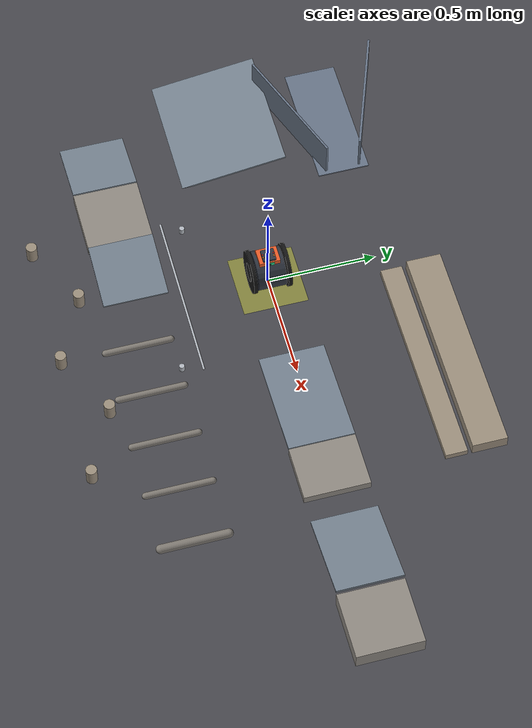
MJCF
<mujoco model="deskbot_skatepark">

  <include file="deskbot.xml"/>

  <option timestep="0.002" gravity="0 0 -9.81" integrator="implicitfast">
    <flag multiccd="enable"/>
  </option>

  <visual>
    <headlight diffuse="0.5 0.5 0.5" ambient="0.3 0.3 0.3"/>
    <global offwidth="1280" offheight="720"/>
    <quality shadowsize="4096"/>
  </visual>

  <statistic center="0 0 0.15" extent="3.0"/>

  <asset>
    <!-- Ground -->
    <texture type="2d" name="grid_tex" builtin="checker" width="512" height="512"
             rgb1="0.25 0.25 0.27" rgb2="0.30 0.30 0.32"
             mark="edge" markrgb="0.33 0.33 0.35"/>
    <material name="ground" texture="grid_tex" texrepeat="20 20"
              specular="0.15" shininess="0.1" reflectance="0.05"/>

    <!-- Obstacle materials -->
    <material name="concrete" rgba="0.55 0.53 0.50 1" specular="0.2" shininess="0.1"/>
    <material name="ramp"     rgba="0.45 0.50 0.55 1" specular="0.3" shininess="0.15"/>
    <material name="rail"     rgba="0.70 0.72 0.75 1" specular="0.7" shininess="0.5"/>
    <material name="curb"     rgba="0.60 0.55 0.48 1" specular="0.15" shininess="0.08"/>
    <material name="bump"     rgba="0.50 0.48 0.45 1" specular="0.2" shininess="0.1"/>
    <material name="pipe"     rgba="0.40 0.45 0.52 1" specular="0.35" shininess="0.2"/>
    <material name="zone"     rgba="0.9 0.9 0.2 0.4" specular="0" shininess="0"/>
  </asset>

  <worldbody>
    <!-- Lighting -->
    <light pos="2.0 -2.0 4.0" dir="-0.3 0.3 -1" diffuse="0.8 0.78 0.75" castshadow="true"/>
    <light pos="-1.5 2.0 3.5" dir="0.3 -0.3 -1" diffuse="0.3 0.3 0.35" castshadow="false"/>
    <light pos="0 0 4.0" dir="0 0 -1" diffuse="0.2 0.2 0.2" castshadow="false"/>

    <!-- Ground plane -->
    <geom name="floor" type="plane" size="5 5 0.05" material="ground"
          contype="1" conaffinity="1"/>

    <!-- Start zone marker -->
    <geom type="box" size="0.15 0.15 0.0005" pos="0 0 0.001" material="zone"
          contype="0" conaffinity="0"/>

    <!-- Ramp: 50cm long, 30cm wide, rises 4cm — ~4.6 deg incline -->
    <geom name="ramp_gentle" type="box" size="0.25 0.15 0.005"
          pos="0.65 0 0.02" euler="0 -0.08 0"
          material="ramp" friction="1.0 0.005 0.001"/>

    <!-- Platform at top of ramp: 25cm x 30cm, 4cm high -->
    <geom name="platform_1" type="box" size="0.125 0.15 0.02"
          pos="1.025 0 0.02"
          material="concrete" friction="1.0 0.005 0.001"/>

    <!-- Steep ramp: 40cm long, 30cm wide, rises 8cm — ~12 deg -->
    <geom name="ramp_steep" type="box" size="0.20 0.15 0.005"
          pos="1.45 0 0.053" euler="0 -0.21 0"
          material="ramp" friction="1.0 0.005 0.001"/>

    <!-- High platform: 30cm x 30cm, 8cm high -->
    <geom name="platform_high" type="box" size="0.15 0.15 0.04"
          pos="1.80 0 0.04"
          material="concrete" friction="1.0 0.005 0.001"/>

    <geom name="bump_1" type="capsule" size="0.015 0.15"
          pos="0.20 -0.65 0.015" euler="1.5708 0 0"
          material="bump" friction="1.0 0.005 0.001"/>

    <geom name="bump_2" type="capsule" size="0.015 0.15"
          pos="0.45 -0.65 0.015" euler="1.5708 0 0"
          material="bump" friction="1.0 0.005 0.001"/>

    <geom name="bump_3" type="capsule" size="0.015 0.15"
          pos="0.70 -0.65 0.015" euler="1.5708 0 0"
          material="bump" friction="1.0 0.005 0.001"/>

    <geom name="bump_4" type="capsule" size="0.015 0.15"
          pos="0.95 -0.65 0.015" euler="1.5708 0 0"
          material="bump" friction="1.0 0.005 0.001"/>

    <!-- Last bump slightly bigger -->
    <geom name="bump_5" type="capsule" size="0.02 0.15"
          pos="1.22 -0.65 0.02" euler="1.5708 0 0"
          material="bump" friction="1.0 0.005 0.001"/>

    <!-- Low curb: 3cm tall, 1m long, 10cm deep -->
    <geom name="curb" type="box" size="0.50 0.05 0.015"
          pos="0.60 0.55 0.015"
          material="curb" friction="1.2 0.005 0.001"/>

    <!-- Higher step behind the curb -->
    <geom name="step" type="box" size="0.50 0.08 0.03"
          pos="0.60 0.70 0.03"
          material="curb" friction="1.2 0.005 0.001"/>

    <!-- Left wall (~20 deg) -->
    <geom name="halfpipe_L" type="box" size="0.30 0.005 0.12"
          pos="-0.80 0.68 0.06" euler="0 0 -0.35"
          material="pipe" friction="1.0 0.005 0.001"/>

    <!-- Right wall -->
    <geom name="halfpipe_R" type="box" size="0.30 0.005 0.12"
          pos="-0.80 0.32 0.06" euler="0 0 0.35"
          material="pipe" friction="1.0 0.005 0.001"/>

    <!-- Floor of half-pipe -->
    <geom name="halfpipe_floor" type="box" size="0.30 0.12 0.003"
          pos="-0.80 0.50 0.003"
          material="pipe" friction="0.8 0.005 0.001"/>

    <geom name="rail" type="capsule" size="0.005 0.40"
          pos="0.0 -0.40 0.03" euler="0 1.5708 0.25"
          material="rail" friction="0.3 0.001 0.001"/>

    <!-- Rail supports -->
    <geom name="rail_post_1" type="cylinder" size="0.012 0.015"
          pos="-0.36 -0.31 0.015"
          material="rail"/>
    <geom name="rail_post_2" type="cylinder" size="0.012 0.015"
          pos="0.36 -0.49 0.015"
          material="rail"/>

    <!-- Central box: 30cm x 30cm, 5cm tall -->
    <geom name="funbox" type="box" size="0.15 0.15 0.025"
          pos="-0.50 -0.60 0.025"
          material="concrete" friction="1.0 0.005 0.001"/>

    <!-- Ramp up (approaching from +X side) -->
    <geom name="funbox_ramp_front" type="box" size="0.15 0.15 0.005"
          pos="-0.20 -0.60 0.025" euler="0 0.165 0"
          material="ramp" friction="1.0 0.005 0.001"/>

    <!-- Ramp down (leaving from -X side) -->
    <geom name="funbox_ramp_back" type="box" size="0.15 0.15 0.005"
          pos="-0.80 -0.60 0.025" euler="0 -0.165 0"
          material="ramp" friction="1.0 0.005 0.001"/>

    <geom name="pylon_1" type="cylinder" size="0.025 0.04"
          pos="-0.40 -1.00 0.04" material="curb"/>
    <geom name="pylon_2" type="cylinder" size="0.025 0.04"
          pos="-0.10 -0.85 0.04" material="curb"/>
    <geom name="pylon_3" type="cylinder" size="0.025 0.04"
          pos="0.20 -1.00 0.04" material="curb"/>
    <geom name="pylon_4" type="cylinder" size="0.025 0.04"
          pos="0.50 -0.85 0.04" material="curb"/>
    <geom name="pylon_5" type="cylinder" size="0.025 0.04"
          pos="0.80 -1.00 0.04" material="curb"/>

    <geom name="tilt_plate" type="box" size="0.30 0.25 0.004"
          pos="-0.90 0.0 0.03" euler="0.15 0 0"
          material="ramp" friction="1.0 0.005 0.001"/>

  </worldbody>
</mujoco>

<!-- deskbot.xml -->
<mujoco model="deskbot">

  <compiler angle="radian"/>

  <default>
    <joint damping="0.008" armature="0.001"/>
    <geom friction="1.2 0.005 0.001" condim="4" contype="1" conaffinity="1"
          solref="0.005 1.0"/>
    <motor ctrlrange="-3.0 3.0"/>

    <default class="wheel">
      <joint damping="0.003"/>
      <geom material="tire" mass="0.05"/>
    </default>
    <default class="hub">
      <geom material="wheel" contype="0" conaffinity="0" mass="0.005"/>
    </default>
    <default class="visual">
      <geom contype="0" conaffinity="0" mass="0.001"/>
    </default>
  </default>

  <asset>
    <material name="chassis" rgba="0.18 0.20 0.24 1" specular="0.6" shininess="0.4"/>
    <material name="body"    rgba="0.22 0.50 0.72 1" specular="0.5" shininess="0.3"/>
    <material name="accent"  rgba="0.90 0.35 0.15 1" specular="0.4" shininess="0.2"/>
    <material name="screen"  rgba="0.15 0.85 0.55 1" specular="0.8" shininess="0.9"
              emission="0.4"/>
    <material name="wheel"   rgba="0.12 0.12 0.12 1" specular="0.2" shininess="0.05"/>
    <material name="tire"    rgba="0.08 0.08 0.08 1" specular="0.05" shininess="0.01"/>
  </asset>

  <worldbody>
    <body name="chassis" pos="0 0 0.10">
      <joint type="free"/>

      <geom name="base" type="cylinder" size="0.09 0.065"
            pos="0 0 0" euler="1.5708 0 0"
            mass="0.05" material="chassis"/>

      <!-- Main body — cubic block, straddles axle -->
      <geom name="body" type="box" size="0.05 0.058 0.055"
            pos="0 0 0.015" mass="0.35" material="body"/>

      <!-- Head (battery + electronics → heavy) -->
      <geom name="head" type="box" size="0.04 0.048 0.016"
            pos="0 0 0.086" mass="0.18" material="accent"/>

      <!-- Sensor pod — small platform 1cm above head for VL53L0X modules.
           Clearance: sqrt(0² + 0.112²) = 11.2cm > R=10cm → 12mm margin.
           The pod sits just above the wheel tops. -->
      <geom name="sensor_pod" type="box" size="0.030 0.030 0.005"
            pos="0.005 0 0.107" mass="0.02" material="chassis"/>

      <!-- Front screen / LED indicator -->
      <geom name="screen" type="box" size="0.001 0.035 0.030"
            pos="0.051 0 0.015" material="screen" class="visual"/>

      <!-- Face indicator on head -->
      <geom name="face" type="box" size="0.001 0.020 0.010"
            pos="0.041 0 0.086" material="screen" class="visual"/>

      <!-- IMU sensor site (near CoM) -->
      <site name="imu" pos="0 0 0.0" size="0.003" rgba="1 0 0 0.5"/>

      <!-- Camera mount site (on head, forward-facing) -->
      <site name="cam_mount" pos="0.04 0 0.086" zaxis="1 0 0" size="0.005"
            rgba="0.2 0.2 0.2 1"/>

      <!-- FC: front center — LOW mount, horizontal -->
      <site name="rf_FC" pos="0.055 0 -0.04"
            zaxis="1 0 0"
            size="0.004" rgba="1 0.2 0.2 0.8"/>
      <!-- FL: front-left 30deg — LOW mount, near center, horizontal -->
      <site name="rf_FL" pos="0.055 0.015 -0.04"
            zaxis="0.866 0.5 0"
            size="0.004" rgba="1 0.2 0.2 0.8"/>
      <!-- FR: front-right 30deg — LOW mount, near center, horizontal -->
      <site name="rf_FR" pos="0.055 -0.015 -0.04"
            zaxis="0.866 -0.5 0"
            size="0.004" rgba="1 0.2 0.2 0.8"/>
      <site name="rf_FL2" pos="0.015 0.025 0.112"
            zaxis="0.5714 0.8161 -0.0872"
            size="0.004" rgba="1 0.6 0.2 0.8"/>
      <!-- FR2: front-right-wide 55deg — HIGH mount on pod, -5deg tilt -->
      <site name="rf_FR2" pos="0.015 -0.025 0.112"
            zaxis="0.5714 -0.8161 -0.0872"
            size="0.004" rgba="1 0.6 0.2 0.8"/>
      <!-- SL: side-left 90deg — HIGH mount on pod, -5deg tilt -->
      <site name="rf_SL" pos="0.0 0.025 0.112"
            zaxis="0 0.9962 -0.0872"
            size="0.004" rgba="1 0.2 0.2 0.8"/>
      <!-- SR: side-right 90deg — HIGH mount on pod, -5deg tilt -->
      <site name="rf_SR" pos="0.0 -0.025 0.112"
            zaxis="0 -0.9962 -0.0872"
            size="0.004" rgba="1 0.2 0.2 0.8"/>

      <!-- Left wheel (R=10cm, tight to body: 13mm gap) -->
      <body name="wheel_L" pos="0 0.08 0">
        <joint name="wheel_L" type="hinge" axis="0 1 0" class="wheel"/>
        <geom name="tire_L" type="cylinder" size="0.10 0.009"
              euler="1.5708 0 0" class="wheel"/>
        <geom name="hub_L" type="cylinder" size="0.045 0.01"
              euler="1.5708 0 0" class="hub"/>
      </body>

      <!-- Right wheel (R=10cm, tight to body: 13mm gap) -->
      <body name="wheel_R" pos="0 -0.08 0">
        <joint name="wheel_R" type="hinge" axis="0 1 0" class="wheel"/>
        <geom name="tire_R" type="cylinder" size="0.10 0.009"
              euler="1.5708 0 0" class="wheel"/>
        <geom name="hub_R" type="cylinder" size="0.045 0.01"
              euler="1.5708 0 0" class="hub"/>
      </body>

      <!-- Robot-attached cameras -->
      <camera name="follow" mode="track" pos="0.8 -0.5 0.4"
              xyaxes="0.6 1 0 -0.2 0 1"/>
      <camera name="onboard" mode="fixed" pos="0.06 0 0.10"
              xyaxes="0 -1 0 0 0 1"/>
    </body>
  </worldbody>

  <actuator>
    <motor joint="wheel_L" name="motor_L" gear="1"/>
    <motor joint="wheel_R" name="motor_R" gear="1"/>
  </actuator>

  <sensor>
    <!-- IMU (MPU6050-like): accelerometer + gyroscope -->
    <accelerometer name="accel" site="imu"/>
    <gyro          name="gyro"  site="imu"/>
    <!-- Wheel encoders: angular velocity -->
    <jointvel name="enc_L" joint="wheel_L"/>
    <jointvel name="enc_R" joint="wheel_R"/>
  </sensor>
</mujoco>
